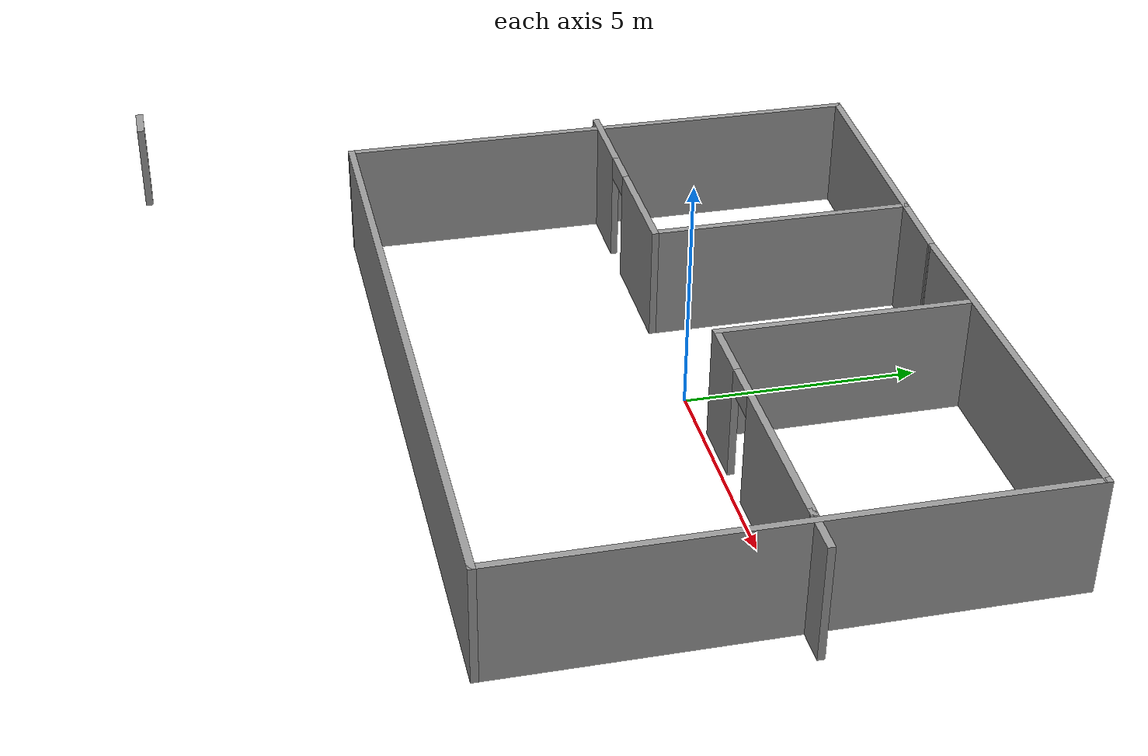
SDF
<?xml version='1.0'?>
<sdf version='1.7'>
  <model name='building1'>
    <link name='Door_3'>
      <pose>-11.2514 -10.4541 0 0 -0 0</pose>
      <self_collide>0</self_collide>
      <enable_wind>0</enable_wind>
      <kinematic>0</kinematic>
      <visual name='Door_3_Visual'>
        <pose>0 0 1 0 -0 0</pose>
        <geometry>
          <box>
            <size>0.9 0.17 2</size>
          </box>
        </geometry>
        <material>
          <script>
            <uri>file://media/materials/scripts/gazebo.material</uri>
            <name>Gazebo/Grey</name>
          </script>
          <shader type='pixel'/>
        </material>
        <transparency>0</transparency>
        <cast_shadows>1</cast_shadows>
      </visual>
      <collision name='Door_3_Collision'>
        <laser_retro>0</laser_retro>
        <max_contacts>10</max_contacts>
        <pose>0 0 1 0 -0 0</pose>
        <geometry>
          <box>
            <size>0.9 0.17 2</size>
          </box>
        </geometry>
        <surface>
          <friction>
            <ode>
              <mu>1</mu>
              <mu2>1</mu2>
              <fdir1>0 0 0</fdir1>
              <slip1>0</slip1>
              <slip2>0</slip2>
            </ode>
            <torsional>
              <coefficient>1</coefficient>
              <patch_radius>0</patch_radius>
              <surface_radius>0</surface_radius>
              <use_patch_radius>1</use_patch_radius>
              <ode>
                <slip>0</slip>
              </ode>
            </torsional>
          </friction>
          <bounce>
            <restitution_coefficient>0</restitution_coefficient>
            <threshold>1e+06</threshold>
          </bounce>
          <contact>
            <collide_without_contact>0</collide_without_contact>
            <collide_without_contact_bitmask>1</collide_without_contact_bitmask>
            <collide_bitmask>1</collide_bitmask>
            <ode>
              <soft_cfm>0</soft_cfm>
              <soft_erp>0.2</soft_erp>
              <kp>1e+13</kp>
              <kd>1</kd>
              <max_vel>0.01</max_vel>
              <min_depth>0</min_depth>
            </ode>
            <bullet>
              <split_impulse>1</split_impulse>
              <split_impulse_penetration_threshold>-0.01</split_impulse_penetration_threshold>
              <soft_cfm>0</soft_cfm>
              <soft_erp>0.2</soft_erp>
              <kp>1e+13</kp>
              <kd>1</kd>
            </bullet>
          </contact>
        </surface>
      </collision>
    </link>
    <link name='Wall_10'>
      <pose>1.28703 2.87364 0 0 0 -1.5708</pose>
      <self_collide>0</self_collide>
      <enable_wind>0</enable_wind>
      <kinematic>0</kinematic>
      <visual name='Wall_10_Visual'>
        <pose>0 0 1.25 0 -0 0</pose>
        <geometry>
          <box>
            <size>5.5 0.15 2.5</size>
          </box>
        </geometry>
        <material>
          <script>
            <uri>file://media/materials/scripts/gazebo.material</uri>
            <name>Gazebo/Grey</name>
          </script>
          <ambient>1 1 1 1</ambient>
          <shader type='pixel'/>
        </material>
        <meta>
          <layer>0</layer>
        </meta>
        <transparency>0</transparency>
        <cast_shadows>1</cast_shadows>
      </visual>
      <collision name='Wall_10_Collision'>
        <laser_retro>0</laser_retro>
        <max_contacts>10</max_contacts>
        <pose>0 0 1.25 0 -0 0</pose>
        <geometry>
          <box>
            <size>5.5 0.15 2.5</size>
          </box>
        </geometry>
        <surface>
          <friction>
            <ode>
              <mu>1</mu>
              <mu2>1</mu2>
              <fdir1>0 0 0</fdir1>
              <slip1>0</slip1>
              <slip2>0</slip2>
            </ode>
            <torsional>
              <coefficient>1</coefficient>
              <patch_radius>0</patch_radius>
              <surface_radius>0</surface_radius>
              <use_patch_radius>1</use_patch_radius>
              <ode>
                <slip>0</slip>
              </ode>
            </torsional>
          </friction>
          <bounce>
            <restitution_coefficient>0</restitution_coefficient>
            <threshold>1e+06</threshold>
          </bounce>
          <contact>
            <collide_without_contact>0</collide_without_contact>
            <collide_without_contact_bitmask>1</collide_without_contact_bitmask>
            <collide_bitmask>1</collide_bitmask>
            <ode>
              <soft_cfm>0</soft_cfm>
              <soft_erp>0.2</soft_erp>
              <kp>1e+13</kp>
              <kd>1</kd>
              <max_vel>0.01</max_vel>
              <min_depth>0</min_depth>
            </ode>
            <bullet>
              <split_impulse>1</split_impulse>
              <split_impulse_penetration_threshold>-0.01</split_impulse_penetration_threshold>
              <soft_cfm>0</soft_cfm>
              <soft_erp>0.2</soft_erp>
              <kp>1e+13</kp>
              <kd>1</kd>
            </bullet>
          </contact>
        </surface>
      </collision>
    </link>
    <link name='Wall_11'>
      <pose>4.21203 0.198638 0 0 -0 0</pose>
      <self_collide>0</self_collide>
      <enable_wind>0</enable_wind>
      <kinematic>0</kinematic>
      <visual name='Wall_11_Visual_0'>
        <pose>-2.27953 0 1.25 0 -0 0</pose>
        <geometry>
          <box>
            <size>1.44094 0.15 2.5</size>
          </box>
        </geometry>
        <material>
          <script>
            <uri>file://media/materials/scripts/gazebo.material</uri>
            <name>Gazebo/Grey</name>
          </script>
          <ambient>1 1 1 1</ambient>
          <shader type='pixel'/>
        </material>
        <meta>
          <layer>0</layer>
        </meta>
        <transparency>0</transparency>
        <cast_shadows>1</cast_shadows>
      </visual>
      <visual name='Wall_11_Visual_1'>
        <pose>1.17047 0 1.25 0 -0 0</pose>
        <geometry>
          <box>
            <size>3.65905 0.15 2.5</size>
          </box>
        </geometry>
        <material>
          <script>
            <uri>file://media/materials/scripts/gazebo.material</uri>
            <name>Gazebo/Grey</name>
          </script>
          <ambient>1 1 1 1</ambient>
          <shader type='pixel'/>
        </material>
        <meta>
          <layer>0</layer>
        </meta>
        <transparency>0</transparency>
        <cast_shadows>1</cast_shadows>
      </visual>
      <visual name='Wall_11_Visual_2'>
        <pose>-1.10905 0 2.25 0 -0 0</pose>
        <geometry>
          <box>
            <size>0.9 0.15 0.5</size>
          </box>
        </geometry>
        <material>
          <script>
            <uri>file://media/materials/scripts/gazebo.material</uri>
            <name>Gazebo/Grey</name>
          </script>
          <ambient>1 1 1 1</ambient>
          <shader type='pixel'/>
        </material>
        <meta>
          <layer>0</layer>
        </meta>
        <transparency>0</transparency>
        <cast_shadows>1</cast_shadows>
      </visual>
      <collision name='Wall_11_Collision_0'>
        <laser_retro>0</laser_retro>
        <max_contacts>10</max_contacts>
        <pose>-2.27953 0 1.25 0 -0 0</pose>
        <geometry>
          <box>
            <size>1.44094 0.15 2.5</size>
          </box>
        </geometry>
        <surface>
          <friction>
            <ode>
              <mu>1</mu>
              <mu2>1</mu2>
              <fdir1>0 0 0</fdir1>
              <slip1>0</slip1>
              <slip2>0</slip2>
            </ode>
            <torsional>
              <coefficient>1</coefficient>
              <patch_radius>0</patch_radius>
              <surface_radius>0</surface_radius>
              <use_patch_radius>1</use_patch_radius>
              <ode>
                <slip>0</slip>
              </ode>
            </torsional>
          </friction>
          <bounce>
            <restitution_coefficient>0</restitution_coefficient>
            <threshold>1e+06</threshold>
          </bounce>
          <contact>
            <collide_without_contact>0</collide_without_contact>
            <collide_without_contact_bitmask>1</collide_without_contact_bitmask>
            <collide_bitmask>1</collide_bitmask>
            <ode>
              <soft_cfm>0</soft_cfm>
              <soft_erp>0.2</soft_erp>
              <kp>1e+13</kp>
              <kd>1</kd>
              <max_vel>0.01</max_vel>
              <min_depth>0</min_depth>
            </ode>
            <bullet>
              <split_impulse>1</split_impulse>
              <split_impulse_penetration_threshold>-0.01</split_impulse_penetration_threshold>
              <soft_cfm>0</soft_cfm>
              <soft_erp>0.2</soft_erp>
              <kp>1e+13</kp>
              <kd>1</kd>
            </bullet>
          </contact>
        </surface>
      </collision>
      <collision name='Wall_11_Collision_1'>
        <laser_retro>0</laser_retro>
        <max_contacts>10</max_contacts>
        <pose>1.17047 0 1.25 0 -0 0</pose>
        <geometry>
          <box>
            <size>3.65905 0.15 2.5</size>
          </box>
        </geometry>
        <surface>
          <friction>
            <ode>
              <mu>1</mu>
              <mu2>1</mu2>
              <fdir1>0 0 0</fdir1>
              <slip1>0</slip1>
              <slip2>0</slip2>
            </ode>
            <torsional>
              <coefficient>1</coefficient>
              <patch_radius>0</patch_radius>
              <surface_radius>0</surface_radius>
              <use_patch_radius>1</use_patch_radius>
              <ode>
                <slip>0</slip>
              </ode>
            </torsional>
          </friction>
          <bounce>
            <restitution_coefficient>0</restitution_coefficient>
            <threshold>1e+06</threshold>
          </bounce>
          <contact>
            <collide_without_contact>0</collide_without_contact>
            <collide_without_contact_bitmask>1</collide_without_contact_bitmask>
            <collide_bitmask>1</collide_bitmask>
            <ode>
              <soft_cfm>0</soft_cfm>
              <soft_erp>0.2</soft_erp>
              <kp>1e+13</kp>
              <kd>1</kd>
              <max_vel>0.01</max_vel>
              <min_depth>0</min_depth>
            </ode>
            <bullet>
              <split_impulse>1</split_impulse>
              <split_impulse_penetration_threshold>-0.01</split_impulse_penetration_threshold>
              <soft_cfm>0</soft_cfm>
              <soft_erp>0.2</soft_erp>
              <kp>1e+13</kp>
              <kd>1</kd>
            </bullet>
          </contact>
        </surface>
      </collision>
      <collision name='Wall_11_Collision_2'>
        <laser_retro>0</laser_retro>
        <max_contacts>10</max_contacts>
        <pose>-1.10905 0 2.25 0 -0 0</pose>
        <geometry>
          <box>
            <size>0.9 0.15 0.5</size>
          </box>
        </geometry>
        <surface>
          <friction>
            <ode>
              <mu>1</mu>
              <mu2>1</mu2>
              <fdir1>0 0 0</fdir1>
              <slip1>0</slip1>
              <slip2>0</slip2>
            </ode>
            <torsional>
              <coefficient>1</coefficient>
              <patch_radius>0</patch_radius>
              <surface_radius>0</surface_radius>
              <use_patch_radius>1</use_patch_radius>
              <ode>
                <slip>0</slip>
              </ode>
            </torsional>
          </friction>
          <bounce>
            <restitution_coefficient>0</restitution_coefficient>
            <threshold>1e+06</threshold>
          </bounce>
          <contact>
            <collide_without_contact>0</collide_without_contact>
            <collide_without_contact_bitmask>1</collide_without_contact_bitmask>
            <collide_bitmask>1</collide_bitmask>
            <ode>
              <soft_cfm>0</soft_cfm>
              <soft_erp>0.2</soft_erp>
              <kp>1e+13</kp>
              <kd>1</kd>
              <max_vel>0.01</max_vel>
              <min_depth>0</min_depth>
            </ode>
            <bullet>
              <split_impulse>1</split_impulse>
              <split_impulse_penetration_threshold>-0.01</split_impulse_penetration_threshold>
              <soft_cfm>0</soft_cfm>
              <soft_erp>0.2</soft_erp>
              <kp>1e+13</kp>
              <kd>1</kd>
            </bullet>
          </contact>
        </surface>
      </collision>
    </link>
    <link name='Wall_12'>
      <pose>7.18703 0.198638 0 0 -0 0</pose>
      <self_collide>0</self_collide>
      <enable_wind>0</enable_wind>
      <kinematic>0</kinematic>
      <visual name='Wall_12_Visual'>
        <pose>0 0 1.25 0 -0 0</pose>
        <geometry>
          <box>
            <size>0.25 0.15 2.5</size>
          </box>
        </geometry>
        <material>
          <script>
            <uri>file://media/materials/scripts/gazebo.material</uri>
            <name>Gazebo/Grey</name>
          </script>
          <ambient>1 1 1 1</ambient>
          <shader type='pixel'/>
        </material>
        <meta>
          <layer>0</layer>
        </meta>
        <transparency>0</transparency>
        <cast_shadows>1</cast_shadows>
      </visual>
      <collision name='Wall_12_Collision'>
        <laser_retro>0</laser_retro>
        <max_contacts>10</max_contacts>
        <pose>0 0 1.25 0 -0 0</pose>
        <geometry>
          <box>
            <size>0.25 0.15 2.5</size>
          </box>
        </geometry>
        <surface>
          <friction>
            <ode>
              <mu>1</mu>
              <mu2>1</mu2>
              <fdir1>0 0 0</fdir1>
              <slip1>0</slip1>
              <slip2>0</slip2>
            </ode>
            <torsional>
              <coefficient>1</coefficient>
              <patch_radius>0</patch_radius>
              <surface_radius>0</surface_radius>
              <use_patch_radius>1</use_patch_radius>
              <ode>
                <slip>0</slip>
              </ode>
            </torsional>
          </friction>
          <bounce>
            <restitution_coefficient>0</restitution_coefficient>
            <threshold>1e+06</threshold>
          </bounce>
          <contact>
            <collide_without_contact>0</collide_without_contact>
            <collide_without_contact_bitmask>1</collide_without_contact_bitmask>
            <collide_bitmask>1</collide_bitmask>
            <ode>
              <soft_cfm>0</soft_cfm>
              <soft_erp>0.2</soft_erp>
              <kp>1e+13</kp>
              <kd>1</kd>
              <max_vel>0.01</max_vel>
              <min_depth>0</min_depth>
            </ode>
            <bullet>
              <split_impulse>1</split_impulse>
              <split_impulse_penetration_threshold>-0.01</split_impulse_penetration_threshold>
              <soft_cfm>0</soft_cfm>
              <soft_erp>0.2</soft_erp>
              <kp>1e+13</kp>
              <kd>1</kd>
            </bullet>
          </contact>
        </surface>
      </collision>
    </link>
    <link name='Wall_13'>
      <pose>7.66203 0.198638 0 0 -0 0</pose>
      <self_collide>0</self_collide>
      <enable_wind>0</enable_wind>
      <kinematic>0</kinematic>
      <visual name='Wall_13_Visual'>
        <pose>0 0 1.25 0 -0 0</pose>
        <geometry>
          <box>
            <size>1 0.15 2.5</size>
          </box>
        </geometry>
        <material>
          <script>
            <uri>file://media/materials/scripts/gazebo.material</uri>
            <name>Gazebo/Grey</name>
          </script>
          <ambient>1 1 1 1</ambient>
          <shader type='pixel'/>
        </material>
        <meta>
          <layer>0</layer>
        </meta>
        <transparency>0</transparency>
        <cast_shadows>1</cast_shadows>
      </visual>
      <collision name='Wall_13_Collision'>
        <laser_retro>0</laser_retro>
        <max_contacts>10</max_contacts>
        <pose>0 0 1.25 0 -0 0</pose>
        <geometry>
          <box>
            <size>1 0.15 2.5</size>
          </box>
        </geometry>
        <surface>
          <friction>
            <ode>
              <mu>1</mu>
              <mu2>1</mu2>
              <fdir1>0 0 0</fdir1>
              <slip1>0</slip1>
              <slip2>0</slip2>
            </ode>
            <torsional>
              <coefficient>1</coefficient>
              <patch_radius>0</patch_radius>
              <surface_radius>0</surface_radius>
              <use_patch_radius>1</use_patch_radius>
              <ode>
                <slip>0</slip>
              </ode>
            </torsional>
          </friction>
          <bounce>
            <restitution_coefficient>0</restitution_coefficient>
            <threshold>1e+06</threshold>
          </bounce>
          <contact>
            <collide_without_contact>0</collide_without_contact>
            <collide_without_contact_bitmask>1</collide_without_contact_bitmask>
            <collide_bitmask>1</collide_bitmask>
            <ode>
              <soft_cfm>0</soft_cfm>
              <soft_erp>0.2</soft_erp>
              <kp>1e+13</kp>
              <kd>1</kd>
              <max_vel>0.01</max_vel>
              <min_depth>0</min_depth>
            </ode>
            <bullet>
              <split_impulse>1</split_impulse>
              <split_impulse_penetration_threshold>-0.01</split_impulse_penetration_threshold>
              <soft_cfm>0</soft_cfm>
              <soft_erp>0.2</soft_erp>
              <kp>1e+13</kp>
              <kd>1</kd>
            </bullet>
          </contact>
        </surface>
      </collision>
    </link>
    <link name='Wall_15'>
      <pose>-2.73703 2.80245 0 0 0 -1.5708</pose>
      <self_collide>0</self_collide>
      <enable_wind>0</enable_wind>
      <kinematic>0</kinematic>
      <visual name='Wall_15_Visual'>
        <pose>0 0 1.25 0 -0 0</pose>
        <geometry>
          <box>
            <size>5.75 0.15 2.5</size>
          </box>
        </geometry>
        <material>
          <script>
            <uri>file://media/materials/scripts/gazebo.material</uri>
            <name>Gazebo/Grey</name>
          </script>
          <ambient>1 1 1 1</ambient>
          <shader type='pixel'/>
        </material>
        <meta>
          <layer>0</layer>
        </meta>
        <transparency>0</transparency>
        <cast_shadows>1</cast_shadows>
      </visual>
      <collision name='Wall_15_Collision'>
        <laser_retro>0</laser_retro>
        <max_contacts>10</max_contacts>
        <pose>0 0 1.25 0 -0 0</pose>
        <geometry>
          <box>
            <size>5.75 0.15 2.5</size>
          </box>
        </geometry>
        <surface>
          <friction>
            <ode>
              <mu>1</mu>
              <mu2>1</mu2>
              <fdir1>0 0 0</fdir1>
              <slip1>0</slip1>
              <slip2>0</slip2>
            </ode>
            <torsional>
              <coefficient>1</coefficient>
              <patch_radius>0</patch_radius>
              <surface_radius>0</surface_radius>
              <use_patch_radius>1</use_patch_radius>
              <ode>
                <slip>0</slip>
              </ode>
            </torsional>
          </friction>
          <bounce>
            <restitution_coefficient>0</restitution_coefficient>
            <threshold>1e+06</threshold>
          </bounce>
          <contact>
            <collide_without_contact>0</collide_without_contact>
            <collide_without_contact_bitmask>1</collide_without_contact_bitmask>
            <collide_bitmask>1</collide_bitmask>
            <ode>
              <soft_cfm>0</soft_cfm>
              <soft_erp>0.2</soft_erp>
              <kp>1e+13</kp>
              <kd>1</kd>
              <max_vel>0.01</max_vel>
              <min_depth>0</min_depth>
            </ode>
            <bullet>
              <split_impulse>1</split_impulse>
              <split_impulse_penetration_threshold>-0.01</split_impulse_penetration_threshold>
              <soft_cfm>0</soft_cfm>
              <soft_erp>0.2</soft_erp>
              <kp>1e+13</kp>
              <kd>1</kd>
            </bullet>
          </contact>
        </surface>
      </collision>
    </link>
    <link name='Wall_16'>
      <pose>-5.41203 0.002445 0 0 -0 3.14159</pose>
      <self_collide>0</self_collide>
      <enable_wind>0</enable_wind>
      <kinematic>0</kinematic>
      <visual name='Wall_16_Visual_0'>
        <pose>-1.4375 0 1.25 0 -0 0</pose>
        <geometry>
          <box>
            <size>2.625 0.15 2.5</size>
          </box>
        </geometry>
        <material>
          <script>
            <uri>file://media/materials/scripts/gazebo.material</uri>
            <name>Gazebo/Grey</name>
          </script>
          <ambient>1 1 1 1</ambient>
          <shader type='pixel'/>
        </material>
        <meta>
          <layer>0</layer>
        </meta>
        <transparency>0</transparency>
        <cast_shadows>1</cast_shadows>
      </visual>
      <visual name='Wall_16_Visual_1'>
        <pose>1.7625 0 1.25 0 -0 0</pose>
        <geometry>
          <box>
            <size>1.975 0.15 2.5</size>
          </box>
        </geometry>
        <material>
          <script>
            <uri>file://media/materials/scripts/gazebo.material</uri>
            <name>Gazebo/Grey</name>
          </script>
          <ambient>1 1 1 1</ambient>
          <shader type='pixel'/>
        </material>
        <meta>
          <layer>0</layer>
        </meta>
        <transparency>0</transparency>
        <cast_shadows>1</cast_shadows>
      </visual>
      <visual name='Wall_16_Visual_2'>
        <pose>0.325 0 2.25 0 -0 0</pose>
        <geometry>
          <box>
            <size>0.9 0.15 0.5</size>
          </box>
        </geometry>
        <material>
          <script>
            <uri>file://media/materials/scripts/gazebo.material</uri>
            <name>Gazebo/Grey</name>
          </script>
          <ambient>1 1 1 1</ambient>
          <shader type='pixel'/>
        </material>
        <meta>
          <layer>0</layer>
        </meta>
        <transparency>0</transparency>
        <cast_shadows>1</cast_shadows>
      </visual>
      <collision name='Wall_16_Collision_0'>
        <laser_retro>0</laser_retro>
        <max_contacts>10</max_contacts>
        <pose>-1.4375 0 1.25 0 -0 0</pose>
        <geometry>
          <box>
            <size>2.625 0.15 2.5</size>
          </box>
        </geometry>
        <surface>
          <friction>
            <ode>
              <mu>1</mu>
              <mu2>1</mu2>
              <fdir1>0 0 0</fdir1>
              <slip1>0</slip1>
              <slip2>0</slip2>
            </ode>
            <torsional>
              <coefficient>1</coefficient>
              <patch_radius>0</patch_radius>
              <surface_radius>0</surface_radius>
              <use_patch_radius>1</use_patch_radius>
              <ode>
                <slip>0</slip>
              </ode>
            </torsional>
          </friction>
          <bounce>
            <restitution_coefficient>0</restitution_coefficient>
            <threshold>1e+06</threshold>
          </bounce>
          <contact>
            <collide_without_contact>0</collide_without_contact>
            <collide_without_contact_bitmask>1</collide_without_contact_bitmask>
            <collide_bitmask>1</collide_bitmask>
            <ode>
              <soft_cfm>0</soft_cfm>
              <soft_erp>0.2</soft_erp>
              <kp>1e+13</kp>
              <kd>1</kd>
              <max_vel>0.01</max_vel>
              <min_depth>0</min_depth>
            </ode>
            <bullet>
              <split_impulse>1</split_impulse>
              <split_impulse_penetration_threshold>-0.01</split_impulse_penetration_threshold>
              <soft_cfm>0</soft_cfm>
              <soft_erp>0.2</soft_erp>
              <kp>1e+13</kp>
              <kd>1</kd>
            </bullet>
          </contact>
        </surface>
      </collision>
      <collision name='Wall_16_Collision_1'>
        <laser_retro>0</laser_retro>
        <max_contacts>10</max_contacts>
        <pose>1.7625 0 1.25 0 -0 0</pose>
        <geometry>
          <box>
            <size>1.975 0.15 2.5</size>
          </box>
        </geometry>
        <surface>
          <friction>
            <ode>
              <mu>1</mu>
              <mu2>1</mu2>
              <fdir1>0 0 0</fdir1>
              <slip1>0</slip1>
              <slip2>0</slip2>
            </ode>
            <torsional>
              <coefficient>1</coefficient>
              <patch_radius>0</patch_radius>
              <surface_radius>0</surface_radius>
              <use_patch_radius>1</use_patch_radius>
              <ode>
                <slip>0</slip>
              </ode>
            </torsional>
          </friction>
          <bounce>
            <restitution_coefficient>0</restitution_coefficient>
            <threshold>1e+06</threshold>
          </bounce>
          <contact>
            <collide_without_contact>0</collide_without_contact>
            <collide_without_contact_bitmask>1</collide_without_contact_bitmask>
            <collide_bitmask>1</collide_bitmask>
            <ode>
              <soft_cfm>0</soft_cfm>
              <soft_erp>0.2</soft_erp>
              <kp>1e+13</kp>
              <kd>1</kd>
              <max_vel>0.01</max_vel>
              <min_depth>0</min_depth>
            </ode>
            <bullet>
              <split_impulse>1</split_impulse>
              <split_impulse_penetration_threshold>-0.01</split_impulse_penetration_threshold>
              <soft_cfm>0</soft_cfm>
              <soft_erp>0.2</soft_erp>
              <kp>1e+13</kp>
              <kd>1</kd>
            </bullet>
          </contact>
        </surface>
      </collision>
      <collision name='Wall_16_Collision_2'>
        <laser_retro>0</laser_retro>
        <max_contacts>10</max_contacts>
        <pose>0.325 0 2.25 0 -0 0</pose>
        <geometry>
          <box>
            <size>0.9 0.15 0.5</size>
          </box>
        </geometry>
        <surface>
          <friction>
            <ode>
              <mu>1</mu>
              <mu2>1</mu2>
              <fdir1>0 0 0</fdir1>
              <slip1>0</slip1>
              <slip2>0</slip2>
            </ode>
            <torsional>
              <coefficient>1</coefficient>
              <patch_radius>0</patch_radius>
              <surface_radius>0</surface_radius>
              <use_patch_radius>1</use_patch_radius>
              <ode>
                <slip>0</slip>
              </ode>
            </torsional>
          </friction>
          <bounce>
            <restitution_coefficient>0</restitution_coefficient>
            <threshold>1e+06</threshold>
          </bounce>
          <contact>
            <collide_without_contact>0</collide_without_contact>
            <collide_without_contact_bitmask>1</collide_without_contact_bitmask>
            <collide_bitmask>1</collide_bitmask>
            <ode>
              <soft_cfm>0</soft_cfm>
              <soft_erp>0.2</soft_erp>
              <kp>1e+13</kp>
              <kd>1</kd>
              <max_vel>0.01</max_vel>
              <min_depth>0</min_depth>
            </ode>
            <bullet>
              <split_impulse>1</split_impulse>
              <split_impulse_penetration_threshold>-0.01</split_impulse_penetration_threshold>
              <soft_cfm>0</soft_cfm>
              <soft_erp>0.2</soft_erp>
              <kp>1e+13</kp>
              <kd>1</kd>
            </bullet>
          </contact>
        </surface>
      </collision>
    </link>
    <link name='Wall_4'>
      <pose>3.20931 5.54864 0 0 -0 0</pose>
      <self_collide>0</self_collide>
      <enable_wind>0</enable_wind>
      <kinematic>0</kinematic>
      <visual name='Wall_4_Visual'>
        <pose>0 0 1.25 0 -0 0</pose>
        <geometry>
          <box>
            <size>8.5 0.15 2.5</size>
          </box>
        </geometry>
        <material>
          <script>
            <uri>file://media/materials/scripts/gazebo.material</uri>
            <name>Gazebo/Grey</name>
          </script>
          <ambient>1 1 1 1</ambient>
          <shader type='pixel'/>
        </material>
        <meta>
          <layer>0</layer>
        </meta>
        <transparency>0</transparency>
        <cast_shadows>1</cast_shadows>
      </visual>
      <collision name='Wall_4_Collision'>
        <laser_retro>0</laser_retro>
        <max_contacts>10</max_contacts>
        <pose>0 0 1.25 0 -0 0</pose>
        <geometry>
          <box>
            <size>8.5 0.15 2.5</size>
          </box>
        </geometry>
        <surface>
          <friction>
            <ode>
              <mu>1</mu>
              <mu2>1</mu2>
              <fdir1>0 0 0</fdir1>
              <slip1>0</slip1>
              <slip2>0</slip2>
            </ode>
            <torsional>
              <coefficient>1</coefficient>
              <patch_radius>0</patch_radius>
              <surface_radius>0</surface_radius>
              <use_patch_radius>1</use_patch_radius>
              <ode>
                <slip>0</slip>
              </ode>
            </torsional>
          </friction>
          <bounce>
            <restitution_coefficient>0</restitution_coefficient>
            <threshold>1e+06</threshold>
          </bounce>
          <contact>
            <collide_without_contact>0</collide_without_contact>
            <collide_without_contact_bitmask>1</collide_without_contact_bitmask>
            <collide_bitmask>1</collide_bitmask>
            <ode>
              <soft_cfm>0</soft_cfm>
              <soft_erp>0.2</soft_erp>
              <kp>1e+13</kp>
              <kd>1</kd>
              <max_vel>0.01</max_vel>
              <min_depth>0</min_depth>
            </ode>
            <bullet>
              <split_impulse>1</split_impulse>
              <split_impulse_penetration_threshold>-0.01</split_impulse_penetration_threshold>
              <soft_cfm>0</soft_cfm>
              <soft_erp>0.2</soft_erp>
              <kp>1e+13</kp>
              <kd>1</kd>
            </bullet>
          </contact>
        </surface>
      </collision>
    </link>
    <link name='Wall_5'>
      <pose>7.38431 -0.126362 0 0 0 -1.5708</pose>
      <self_collide>0</self_collide>
      <enable_wind>0</enable_wind>
      <kinematic>0</kinematic>
      <visual name='Wall_5_Visual'>
        <pose>0 0 1.25 0 -0 0</pose>
        <geometry>
          <box>
            <size>11.5 0.15 2.5</size>
          </box>
        </geometry>
        <material>
          <script>
            <uri>file://media/materials/scripts/gazebo.material</uri>
            <name>Gazebo/Grey</name>
          </script>
          <ambient>1 1 1 1</ambient>
          <shader type='pixel'/>
        </material>
        <meta>
          <layer>0</layer>
        </meta>
        <transparency>0</transparency>
        <cast_shadows>1</cast_shadows>
      </visual>
      <collision name='Wall_5_Collision'>
        <laser_retro>0</laser_retro>
        <max_contacts>10</max_contacts>
        <pose>0 0 1.25 0 -0 0</pose>
        <geometry>
          <box>
            <size>11.5 0.15 2.5</size>
          </box>
        </geometry>
        <surface>
          <friction>
            <ode>
              <mu>1</mu>
              <mu2>1</mu2>
              <fdir1>0 0 0</fdir1>
              <slip1>0</slip1>
              <slip2>0</slip2>
            </ode>
            <torsional>
              <coefficient>1</coefficient>
              <patch_radius>0</patch_radius>
              <surface_radius>0</surface_radius>
              <use_patch_radius>1</use_patch_radius>
              <ode>
                <slip>0</slip>
              </ode>
            </torsional>
          </friction>
          <bounce>
            <restitution_coefficient>0</restitution_coefficient>
            <threshold>1e+06</threshold>
          </bounce>
          <contact>
            <collide_without_contact>0</collide_without_contact>
            <collide_without_contact_bitmask>1</collide_without_contact_bitmask>
            <collide_bitmask>1</collide_bitmask>
            <ode>
              <soft_cfm>0</soft_cfm>
              <soft_erp>0.2</soft_erp>
              <kp>1e+13</kp>
              <kd>1</kd>
              <max_vel>0.01</max_vel>
              <min_depth>0</min_depth>
            </ode>
            <bullet>
              <split_impulse>1</split_impulse>
              <split_impulse_penetration_threshold>-0.01</split_impulse_penetration_threshold>
              <soft_cfm>0</soft_cfm>
              <soft_erp>0.2</soft_erp>
              <kp>1e+13</kp>
              <kd>1</kd>
            </bullet>
          </contact>
        </surface>
      </collision>
    </link>
    <link name='Wall_6'>
      <pose>-0.165693 -5.80136 0 0 -0 3.14159</pose>
      <self_collide>0</self_collide>
      <enable_wind>0</enable_wind>
      <kinematic>0</kinematic>
      <visual name='Wall_6_Visual'>
        <pose>0 0 1.25 0 -0 0</pose>
        <geometry>
          <box>
            <size>15.25 0.15 2.5</size>
          </box>
        </geometry>
        <material>
          <script>
            <uri>file://media/materials/scripts/gazebo.material</uri>
            <name>Gazebo/Grey</name>
          </script>
          <ambient>1 1 1 1</ambient>
          <shader type='pixel'/>
        </material>
        <meta>
          <layer>0</layer>
        </meta>
        <transparency>0</transparency>
        <cast_shadows>1</cast_shadows>
      </visual>
      <collision name='Wall_6_Collision'>
        <laser_retro>0</laser_retro>
        <max_contacts>10</max_contacts>
        <pose>0 0 1.25 0 -0 0</pose>
        <geometry>
          <box>
            <size>15.25 0.15 2.5</size>
          </box>
        </geometry>
        <surface>
          <friction>
            <ode>
              <mu>1</mu>
              <mu2>1</mu2>
              <fdir1>0 0 0</fdir1>
              <slip1>0</slip1>
              <slip2>0</slip2>
            </ode>
            <torsional>
              <coefficient>1</coefficient>
              <patch_radius>0</patch_radius>
              <surface_radius>0</surface_radius>
              <use_patch_radius>1</use_patch_radius>
              <ode>
                <slip>0</slip>
              </ode>
            </torsional>
          </friction>
          <bounce>
            <restitution_coefficient>0</restitution_coefficient>
            <threshold>1e+06</threshold>
          </bounce>
          <contact>
            <collide_without_contact>0</collide_without_contact>
            <collide_without_contact_bitmask>1</collide_without_contact_bitmask>
            <collide_bitmask>1</collide_bitmask>
            <ode>
              <soft_cfm>0</soft_cfm>
              <soft_erp>0.2</soft_erp>
              <kp>1e+13</kp>
              <kd>1</kd>
              <max_vel>0.01</max_vel>
              <min_depth>0</min_depth>
            </ode>
            <bullet>
              <split_impulse>1</split_impulse>
              <split_impulse_penetration_threshold>-0.01</split_impulse_penetration_threshold>
              <soft_cfm>0</soft_cfm>
              <soft_erp>0.2</soft_erp>
              <kp>1e+13</kp>
              <kd>1</kd>
            </bullet>
          </contact>
        </surface>
      </collision>
    </link>
    <link name='Wall_7'>
      <pose>-7.71569 -0.001362 0 0 -0 1.5708</pose>
      <self_collide>0</self_collide>
      <enable_wind>0</enable_wind>
      <kinematic>0</kinematic>
      <visual name='Wall_7_Visual'>
        <pose>0 0 1.25 0 -0 0</pose>
        <geometry>
          <box>
            <size>11.75 0.15 2.5</size>
          </box>
        </geometry>
        <material>
          <script>
            <uri>file://media/materials/scripts/gazebo.material</uri>
            <name>Gazebo/Grey</name>
          </script>
          <ambient>1 1 1 1</ambient>
          <shader type='pixel'/>
        </material>
        <meta>
          <layer>0</layer>
        </meta>
        <transparency>0</transparency>
        <cast_shadows>1</cast_shadows>
      </visual>
      <collision name='Wall_7_Collision'>
        <laser_retro>0</laser_retro>
        <max_contacts>10</max_contacts>
        <pose>0 0 1.25 0 -0 0</pose>
        <geometry>
          <box>
            <size>11.75 0.15 2.5</size>
          </box>
        </geometry>
        <surface>
          <friction>
            <ode>
              <mu>1</mu>
              <mu2>1</mu2>
              <fdir1>0 0 0</fdir1>
              <slip1>0</slip1>
              <slip2>0</slip2>
            </ode>
            <torsional>
              <coefficient>1</coefficient>
              <patch_radius>0</patch_radius>
              <surface_radius>0</surface_radius>
              <use_patch_radius>1</use_patch_radius>
              <ode>
                <slip>0</slip>
              </ode>
            </torsional>
          </friction>
          <bounce>
            <restitution_coefficient>0</restitution_coefficient>
            <threshold>1e+06</threshold>
          </bounce>
          <contact>
            <collide_without_contact>0</collide_without_contact>
            <collide_without_contact_bitmask>1</collide_without_contact_bitmask>
            <collide_bitmask>1</collide_bitmask>
            <ode>
              <soft_cfm>0</soft_cfm>
              <soft_erp>0.2</soft_erp>
              <kp>1e+13</kp>
              <kd>1</kd>
              <max_vel>0.01</max_vel>
              <min_depth>0</min_depth>
            </ode>
            <bullet>
              <split_impulse>1</split_impulse>
              <split_impulse_penetration_threshold>-0.01</split_impulse_penetration_threshold>
              <soft_cfm>0</soft_cfm>
              <soft_erp>0.2</soft_erp>
              <kp>1e+13</kp>
              <kd>1</kd>
            </bullet>
          </contact>
        </surface>
      </collision>
    </link>
    <link name='Wall_8'>
      <pose>-4.34069 5.67364 0 0 0 -0.03702</pose>
      <self_collide>0</self_collide>
      <enable_wind>0</enable_wind>
      <kinematic>0</kinematic>
      <visual name='Wall_8_Visual'>
        <pose>0 0 1.25 0 -0 0</pose>
        <geometry>
          <box>
            <size>6.90463 0.15 2.5</size>
          </box>
        </geometry>
        <material>
          <script>
            <uri>file://media/materials/scripts/gazebo.material</uri>
            <name>Gazebo/Grey</name>
          </script>
          <ambient>1 1 1 1</ambient>
          <shader type='pixel'/>
        </material>
        <meta>
          <layer>0</layer>
        </meta>
        <transparency>0</transparency>
        <cast_shadows>1</cast_shadows>
      </visual>
      <collision name='Wall_8_Collision'>
        <laser_retro>0</laser_retro>
        <max_contacts>10</max_contacts>
        <pose>0 0 1.25 0 -0 0</pose>
        <geometry>
          <box>
            <size>6.90463 0.15 2.5</size>
          </box>
        </geometry>
        <surface>
          <friction>
            <ode>
              <mu>1</mu>
              <mu2>1</mu2>
              <fdir1>0 0 0</fdir1>
              <slip1>0</slip1>
              <slip2>0</slip2>
            </ode>
            <torsional>
              <coefficient>1</coefficient>
              <patch_radius>0</patch_radius>
              <surface_radius>0</surface_radius>
              <use_patch_radius>1</use_patch_radius>
              <ode>
                <slip>0</slip>
              </ode>
            </torsional>
          </friction>
          <bounce>
            <restitution_coefficient>0</restitution_coefficient>
            <threshold>1e+06</threshold>
          </bounce>
          <contact>
            <collide_without_contact>0</collide_without_contact>
            <collide_without_contact_bitmask>1</collide_without_contact_bitmask>
            <collide_bitmask>1</collide_bitmask>
            <ode>
              <soft_cfm>0</soft_cfm>
              <soft_erp>0.2</soft_erp>
              <kp>1e+13</kp>
              <kd>1</kd>
              <max_vel>0.01</max_vel>
              <min_depth>0</min_depth>
            </ode>
            <bullet>
              <split_impulse>1</split_impulse>
              <split_impulse_penetration_threshold>-0.01</split_impulse_penetration_threshold>
              <soft_cfm>0</soft_cfm>
              <soft_erp>0.2</soft_erp>
              <kp>1e+13</kp>
              <kd>1</kd>
            </bullet>
          </contact>
        </surface>
      </collision>
    </link>
    <static>1</static>
    <allow_auto_disable>1</allow_auto_disable>
  </model>
</sdf>
